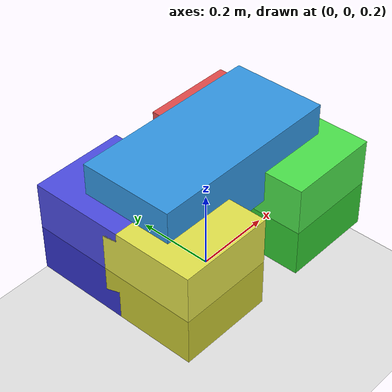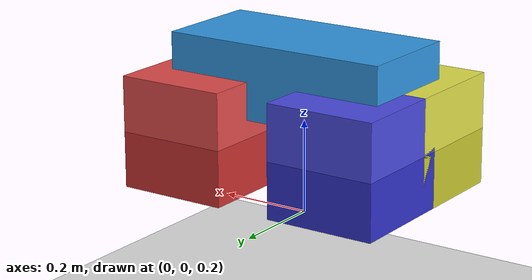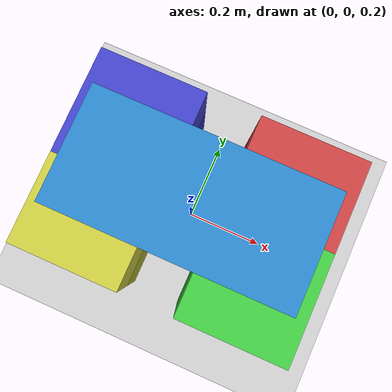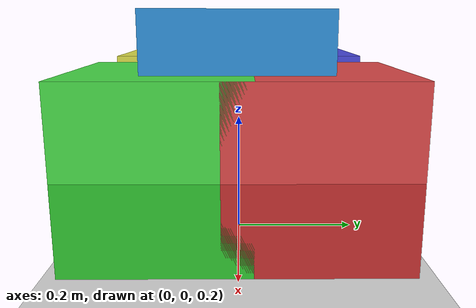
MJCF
<mujoco model="quadruped">
  <compiler angle="radian" inertiafromgeom="true"/>
  <option timestep="0.002" gravity="0 0 -9.81"/>
  <default>
    <joint armature="0.02" damping="1.0" limited="true"/>
    <motor ctrlrange="-1 1" ctrllimited="true" gear="80"/>
  </default>
  <worldbody>
    <light pos="0 0 3" dir="0 0 -1"/>
    <geom name="floor" type="plane" pos="0 0 0" size="20 20 0.1" rgba="0.9 0.9 0.9 1" contype="1" conaffinity="1"/>
    <body name="torso" pos="0 0 0.50">
      <freejoint name="root"/>
      <inertial pos="0 0 0" mass="8.0" diaginertia="0.4 0.6 0.4"/>
      <geom name="torso_body" type="box" size="0.25 0.12 0.08" mass="8.0" rgba="0.2 0.6 0.9 1" contype="1" conaffinity="1"/>
      <site name="torso_site" pos="0 0 0"/>
      <!-- Front Left leg (FL) -->
      <body name="FL_leg" pos="0.18 0.10 0">
        <joint name="FL_hip" type="hinge" axis="0 1 0" range="-1.0 1.0" pos="0 0 0"/>
        <inertial pos="0 0 -0.06" mass="0.4" diaginertia="0.005 0.005 0.002"/>
        <geom name="FL_thigh" type="box" size="0.12 0.025 0.025" mass="0.4" fromto="0 0 0 0 0 -0.12" rgba="0.9 0.3 0.3 1" contype="1" conaffinity="1"/>
        <body name="FL_shank" pos="0 0 -0.12">
          <joint name="FL_knee" type="hinge" axis="0 1 0" range="-1.4 0.0" pos="0 0 0"/>
          <inertial pos="0 0 -0.06" mass="0.3" diaginertia="0.004 0.004 0.002"/>
          <geom name="FL_shank_geom" type="box" size="0.12 0.02 0.02" mass="0.3" fromto="0 0 0 0 0 -0.12" rgba="0.8 0.2 0.2 1" contype="1" conaffinity="1"/>
          <site name="FL_foot" pos="0 0 -0.12" type="sphere" size="0.015" rgba="0.9 0.9 0.9 1"/>
        </body>
      </body>
      <!-- Front Right leg (FR) -->
      <body name="FR_leg" pos="0.18 -0.10 0">
        <joint name="FR_hip" type="hinge" axis="0 1 0" range="-1.0 1.0" pos="0 0 0"/>
        <inertial pos="0 0 -0.06" mass="0.4" diaginertia="0.005 0.005 0.002"/>
        <geom name="FR_thigh" type="box" size="0.12 0.025 0.025" mass="0.4" fromto="0 0 0 0 0 -0.12" rgba="0.3 0.9 0.3 1" contype="1" conaffinity="1"/>
        <body name="FR_shank" pos="0 0 -0.12">
          <joint name="FR_knee" type="hinge" axis="0 1 0" range="-1.4 0.0" pos="0 0 0"/>
          <inertial pos="0 0 -0.06" mass="0.3" diaginertia="0.004 0.004 0.002"/>
          <geom name="FR_shank_geom" type="box" size="0.12 0.02 0.02" mass="0.3" fromto="0 0 0 0 0 -0.12" rgba="0.2 0.8 0.2 1" contype="1" conaffinity="1"/>
          <site name="FR_foot" pos="0 0 -0.12" type="sphere" size="0.015" rgba="0.9 0.9 0.9 1"/>
        </body>
      </body>
      <!-- Rear Left leg (RL) -->
      <body name="RL_leg" pos="-0.18 0.10 0">
        <joint name="RL_hip" type="hinge" axis="0 1 0" range="-1.0 1.0" pos="0 0 0"/>
        <inertial pos="0 0 -0.06" mass="0.4" diaginertia="0.005 0.005 0.002"/>
        <geom name="RL_thigh" type="box" size="0.12 0.025 0.025" mass="0.4" fromto="0 0 0 0 0 -0.12" rgba="0.3 0.3 0.9 1" contype="1" conaffinity="1"/>
        <body name="RL_shank" pos="0 0 -0.12">
          <joint name="RL_knee" type="hinge" axis="0 1 0" range="-1.4 0.0" pos="0 0 0"/>
          <inertial pos="0 0 -0.06" mass="0.3" diaginertia="0.004 0.004 0.002"/>
          <geom name="RL_shank_geom" type="box" size="0.12 0.02 0.02" mass="0.3" fromto="0 0 0 0 0 -0.12" rgba="0.2 0.2 0.8 1" contype="1" conaffinity="1"/>
          <site name="RL_foot" pos="0 0 -0.12" type="sphere" size="0.015" rgba="0.9 0.9 0.9 1"/>
        </body>
      </body>
      <!-- Rear Right leg (RR) -->
      <body name="RR_leg" pos="-0.18 -0.10 0">
        <joint name="RR_hip" type="hinge" axis="0 1 0" range="-1.0 1.0" pos="0 0 0"/>
        <inertial pos="0 0 -0.06" mass="0.4" diaginertia="0.005 0.005 0.002"/>
        <geom name="RR_thigh" type="box" size="0.12 0.025 0.025" mass="0.4" fromto="0 0 0 0 0 -0.12" rgba="0.9 0.9 0.3 1" contype="1" conaffinity="1"/>
        <body name="RR_shank" pos="0 0 -0.12">
          <joint name="RR_knee" type="hinge" axis="0 1 0" range="-1.4 0.0" pos="0 0 0"/>
          <inertial pos="0 0 -0.06" mass="0.3" diaginertia="0.004 0.004 0.002"/>
          <geom name="RR_shank_geom" type="box" size="0.12 0.02 0.02" mass="0.3" fromto="0 0 0 0 0 -0.12" rgba="0.8 0.8 0.2 1" contype="1" conaffinity="1"/>
          <site name="RR_foot" pos="0 0 -0.12" type="sphere" size="0.015" rgba="0.9 0.9 0.9 1"/>
        </body>
      </body>
    </body>
  </worldbody>
  <actuator>
    <motor name="FL_motor" joint="FL_hip"/>
    <motor name="FR_motor" joint="FR_hip"/>
    <motor name="RL_motor" joint="RL_hip"/>
    <motor name="RR_motor" joint="RR_hip"/>
    <motor name="FL_knee_motor" joint="FL_knee"/>
    <motor name="FR_knee_motor" joint="FR_knee"/>
    <motor name="RL_knee_motor" joint="RL_knee"/>
    <motor name="RR_knee_motor" joint="RR_knee"/>
  </actuator>
</mujoco>
